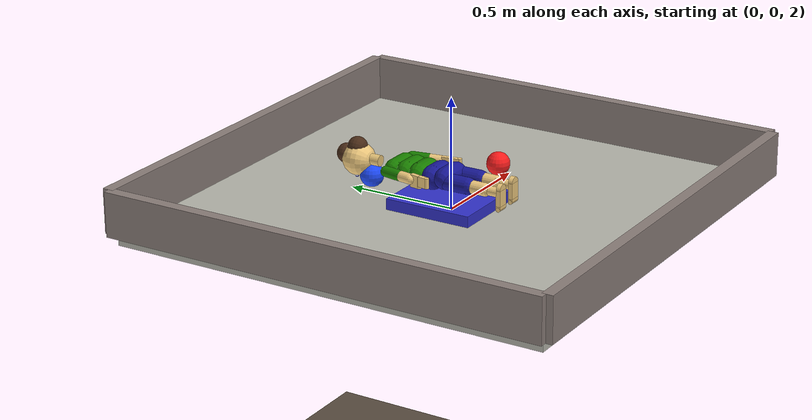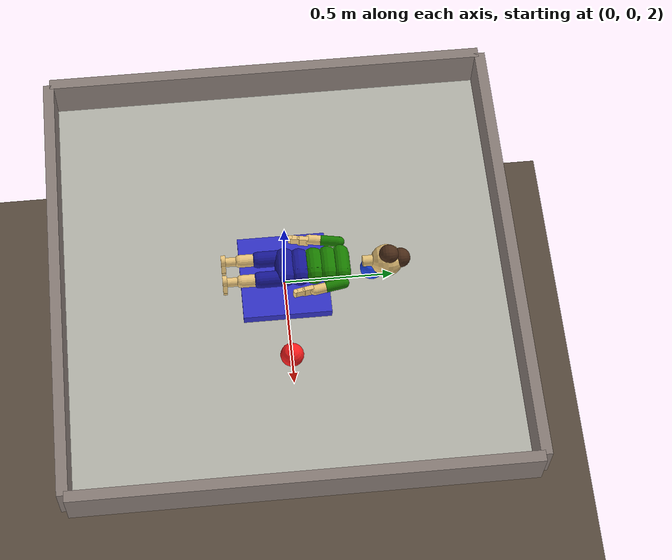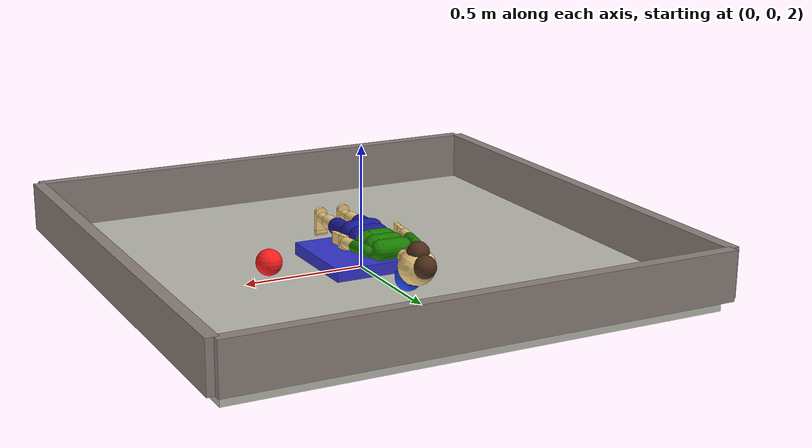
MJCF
<mujoco model="mimo_crawler_cart">
  <compiler angle="degree" inertiafromgeom="true"/>
  <option gravity="0 0 -9.81" integrator="Euler" timestep="0.005" cone="elliptic"/>

  <default>
    <joint limited="true" damping=".1" stiffness=".1" armature="0.001"
           solimplimit="0.98 0.99 0.001 .5 1" solreflimit="0.02 1"/>
    <geom condim="3" friction="1 0.005 0.0002"
          solimp="0.95 0.99 0.001 0.5 1" solref="0.005 1"/>
    <motor ctrlrange="-1 1" ctrllimited="true" forcelimited="true"/>
  </default>

  <asset>
    <material name="skin"       rgba="0.95 0.80 0.50 1"/>
    <material name="head_mat"   rgba="0.95 0.80 0.50 1"/>
    <material name="green_top"  rgba="0.10 0.50 0.00 1"/>
    <material name="blue_pants" rgba="0.10 0.10 0.60 1"/>
    <material name="eye_mat"    rgba="0.98 0.98 0.95 1"/>
    <material name="iris_mat"   rgba="0.15 0.15 0.85 1"/>
    <material name="pupil_mat"  rgba="0.05 0.05 0.05 1"/>
    <material name="hair_mat"   rgba="0.30 0.18 0.10 1"/>
    <material name="lip_mat"    rgba="0.85 0.40 0.35 1"/>
    <material name="neck_mat"   rgba="0.92 0.78 0.48 1"/>
    <material name="cart_mat"   rgba="0.20 0.20 0.80 0.9"/>

    <material name="MatPlatform" rgba="0.72 0.72 0.68 1"/>
    <material name="MatGround"   rgba="0.35 0.30 0.25 1"/>
    <material name="MatWall"     rgba="0.55 0.50 0.48 1"/>
  </asset>

  <contact>
    <pair geom1="lb" geom2="ub1" condim="1"/>
    <!-- Cart geom does not collide with AB body geoms to avoid instability -->
    <exclude body1="cart" body2="hip"/>
  </contact>

  <tendon>
    <fixed name="hip_bend" limited="true" range="-.01 .01">
      <joint joint="robot:hip_bend1" coef="1"/>
      <joint joint="robot:hip_bend2" coef="-1"/>
    </fixed>
    <fixed name="hip_rotation" limited="true" range="-.01 .01">
      <joint joint="robot:hip_rot1" coef="1"/>
      <joint joint="robot:hip_rot2" coef="-1"/>
    </fixed>
    <fixed name="hip_lean" limited="true" range="-.01 .01">
      <joint joint="robot:hip_lean1" coef="1"/>
      <joint joint="robot:hip_lean2" coef="-.5"/>
    </fixed>
  </tendon>

  <worldbody>
    <light cutoff="100" diffuse="1 1 1" dir="0 0 -1" directional="true"
           pos="0 0 5" specular="0.2 0.2 0.2"/>

    <geom name="ground" type="plane" size="10 10 0.1" pos="0 0 0"
          material="MatGround" conaffinity="1" contype="1"/>

    <!-- Platform: top surface at z=2.025 -->
    <geom name="platform" type="box" size="1.0 1.0 0.025" pos="0 0 2.0"
          material="MatPlatform" conaffinity="3" contype="3" friction="0.9 0.3 0.1"/>

    <!-- Guardrails: 20cm tall walls -->
    <geom name="rail_N" type="box" size="1.02 0.025 0.10" pos="0  1.025 2.125"
          material="MatWall" conaffinity="3" contype="3"/>
    <geom name="rail_S" type="box" size="1.02 0.025 0.10" pos="0 -1.025 2.125"
          material="MatWall" conaffinity="3" contype="3"/>
    <geom name="rail_E" type="box" size="0.025 1.02 0.10" pos=" 1.025 0 2.125"
          material="MatWall" conaffinity="3" contype="3"/>
    <geom name="rail_W" type="box" size="0.025 1.02 0.10" pos="-1.025 0 2.125"
          material="MatWall" conaffinity="3" contype="3"/>

    <body name="cart" pos="0 0 2.05">
      <joint name="cart_x" type="slide" axis="1 0 0" limited="false"
             damping="0" stiffness="0" armature="0" frictionloss="0"/>
      <joint name="cart_y" type="slide" axis="0 1 0" limited="false"
             damping="0" stiffness="0" armature="0" frictionloss="0"/>
      <geom name="cart_geom" type="box" size="0.20 0.20 0.025"
            material="cart_mat" contype="0" conaffinity="0" mass="0.5"/>

      <body name="hip" pos="0 0 0.10" quat="0.5 -0.5 0.5 0.5">
        <!-- NO free joint here: AB is rigidly mounted on the cart -->
        <geom name="lb" type="capsule" size=".048 .043" mass="1.1584"
              material="blue_pants" pos="-.002 0 0.005" euler="90 0 0"/>

        <body name="lower_body" pos="0.002 0 0.076">
          <joint name="robot:hip_lean1" type="hinge" pos="0 0 -.05" axis="1 0 0"
                 range="-14 14" stiffness="3.38" damping="0.77" frictionloss=".049" armature="0.01"/>
          <joint name="robot:hip_rot1"  type="hinge" pos="0 0 -.05" axis="0 0 1"
                 range="-18 18" stiffness="1.45" damping="0.29" frictionloss=".018" armature="0.01"/>
          <joint name="robot:hip_bend1" type="hinge" pos="0 0 -0.05" axis="0 1 0"
                 range="-17 30.5" stiffness="2.20" damping="0.84" frictionloss="0.040" armature="0.01"/>
          <geom name="cb" type="capsule" size=".053 .035" mass="1.3245"
                material="blue_pants" pos="0.005 0 -.008" euler="90 0 0" contype="0"/>

          <body name="upper_body" pos="-.002 0 0.091">
            <joint name="robot:hip_lean2" type="hinge" pos="0 0 -.05" axis="1 0 0"
                   range="-27 27" stiffness="1.69" damping="0.38" frictionloss=".024" armature="0.01"/>
            <joint name="robot:hip_rot2"  type="hinge" pos="0 0 -.05" axis="0 0 1"
                   range="-18 18" stiffness="1.45" damping="0.29" frictionloss=".018" armature="0.01"/>
            <joint name="robot:hip_bend2" type="hinge" pos="0 0 -.05" axis="0 1 0"
                   range="-17 30.5" stiffness="2.20" damping="0.84" frictionloss="0.040" armature="0.01"/>
            <geom name="ub1" type="capsule" size=".052 .035" mass="1.0882"
                  material="green_top" pos="0.007 0 -.032" euler="90 0 0"/>
            <geom name="ub2" type="capsule" size=".048 .039" mass="0.9499"
                  material="green_top" pos="0.004 0 0.03" euler="90 0 0"/>

            <body name="chest" pos="0 0 0.09">
              <joint name="robot:chest_lean" type="hinge" pos="0 0 0" axis="1 0 0"
                     range="-9 9" stiffness="1.69" damping="0.38" frictionloss=".024" armature="0.01"/>
              <joint name="robot:chest_rot"  type="hinge" pos="0 0 0" axis="0 0 1"
                     range="-18 18" stiffness="1.45" damping="0.29" frictionloss=".018" armature="0.01"/>
              <geom name="ub3" type="capsule" size=".041 .047" mass="0.7217"
                    material="green_top" pos="0 0 0" euler="90 0 0"/>

              <!-- RIGHT ARM -->
              <body name="right_upper_arm" pos="-.005 -0.105 .003" euler="170 0 0">
                <joint name="robot:right_shoulder_horizontal" type="hinge" pos="0 -.024 0"
                       axis="0 1 -4" range="-28 118" stiffness=".09" damping=".05"
                       frictionloss=".0009" armature="0.004"/>
                <joint name="robot:right_shoulder_ad_ab" type="hinge" pos="0 0 0"
                       axis="-1 0 0" range="-84 183" stiffness=".11" damping=".10"
                       frictionloss=".0014" armature="0.004"/>
                <joint name="robot:right_shoulder_rotation" type="hinge" pos="0 0 0"
                       axis="0 0 -1" range="-99 67" stiffness=".12" damping=".07"
                       frictionloss=".0008" armature="0.004"/>
                <geom name="right_uarm1" type="capsule" material="green_top"
                      size="0.024 0.040" mass=".200" pos="0 0 .040"/>
                <body name="right_lower_arm" pos="0 0 .080">
                  <joint name="robot:right_elbow" type="hinge" pos="0 0 0" axis="0 -1 0"
                         springref="-20" range="-146 5" stiffness=".13" damping=".11"
                         frictionloss=".030" armature="0.002"/>
                  <geom name="right_larm" type="capsule" size=".023 0.028" mass=".140" pos="0 0 .028" material="skin"/>
                  <body name="right_hand" pos="0 -.007 .060">
                    <joint name="robot:right_hand1" type="hinge" pos="0 .007 0" axis="0 0 -1"
                           springref="-20" range="-90 90" stiffness=".22" damping=".03" frictionloss=".007" armature="0.001"/>
                    <joint name="robot:right_hand2" type="hinge" pos="0 0 0" axis="-1 0 0"
                           range="-92 86" stiffness=".33" damping=".11" frictionloss=".007" armature="0.001"/>
                    <joint name="robot:right_hand3" type="hinge" pos="0 0 0" axis="0 1 0"
                           range="-53 48" stiffness=".38" damping=".11" frictionloss=".007" armature="0.001"/>
                    <geom name="geom:right_hand1" type="box" size=".0281 .01 .0208"
                          mass=".04315" pos=".005 0 .0208" material="skin"/>
                    <geom name="geom:right_hand2" type="cylinder" size=".0102 .0278"
                          mass=".01602" pos=".005 0 .0416" euler="0 90 0" material="skin"/>
                    <site name="right_hand_touch" pos=".005 0 .03" size="0.035" rgba="0 0 0 0"/>
                    <body name="right_fingers" pos="0 0 .0416">
                      <joint name="robot:right_fingers" type="hinge" pos="0 0 0" axis="-1 0 0"
                             springref="-40" range="-160 8" stiffness=".017" damping=".018"
                             frictionloss=".0023" armature="0.0001"/>
                      <geom name="geom:right_fingers1" type="box" size=".0228 .01 .0207"
                            mass=".03494" pos="0 0 .0207" material="skin" friction="5 0.02 0.01"/>
                      <geom name="geom:right_fingers2" type="cylinder" size=".0102 .023"
                            mass=".01323" pos="0 0 .0414" euler="0 90 0" material="skin" friction="5 0.02 0.01"/>
                      <site name="right_fingers_touch" pos="0 0 .03" size="0.025" rgba="0 0 0 0"/>
                    </body>
                  </body>
                </body>
              </body>

              <!-- LEFT ARM -->
              <body name="left_upper_arm" pos="-.005 0.105 .003" euler="-170 0 0">
                <joint name="robot:left_shoulder_horizontal" type="hinge" pos="0 .024 0"
                       axis="0 1 4" range="-28 118" stiffness=".09" damping=".05"
                       frictionloss=".0009" armature="0.004"/>
                <joint name="robot:left_shoulder_ad_ab" type="hinge" pos="0 0 0"
                       axis="1 0 0" range="-84 183" stiffness=".11" damping=".10"
                       frictionloss=".0014" armature="0.004"/>
                <joint name="robot:left_shoulder_rotation" type="hinge" pos="0 0 0"
                       axis="0 0 1" range="-99 67" stiffness=".12" damping=".07"
                       frictionloss=".0008" armature="0.004"/>
                <geom name="left_uarm1" type="capsule" material="green_top"
                      size="0.024 0.040" mass=".200" pos="0 0 .040"/>
                <body name="left_lower_arm" pos="0 0 .080">
                  <joint name="robot:left_elbow" type="hinge" pos="0 0 0" axis="0 -1 0"
                         springref="-20" range="-146 5" stiffness=".13" damping=".11"
                         frictionloss=".030" armature="0.002"/>
                  <geom name="left_larm" type="capsule" size=".023 0.028" mass=".140" pos="0 0 .028" material="skin"/>
                  <body name="left_hand" pos="0 .007 .060">
                    <joint name="robot:left_hand1" type="hinge" pos="0 .007 0" axis="0 0 1"
                           springref="-20" range="-90 90" stiffness=".22" damping=".03" frictionloss=".007" armature="0.001"/>
                    <joint name="robot:left_hand2" type="hinge" pos="0 0 0" axis="-1 0 0"
                           range="-92 86" stiffness=".33" damping=".11" frictionloss=".007" armature="0.001"/>
                    <joint name="robot:left_hand3" type="hinge" pos="0 0 0" axis="0 1 0"
                           range="-53 48" stiffness=".38" damping=".11" frictionloss=".007" armature="0.001"/>
                    <geom name="geom:left_hand1" type="box" size=".0281 .01 .0208"
                          mass=".04315" pos=".005 0 .0208" material="skin"/>
                    <geom name="geom:left_hand2" type="cylinder" size=".0102 .0278"
                          mass=".01602" pos=".005 0 .0416" euler="0 90 0" material="skin"/>
                    <site name="left_hand_touch" pos=".005 0 .03" size="0.035" rgba="0 0 0 0"/>
                    <body name="left_fingers" pos="0 0 .0416">
                      <joint name="robot:left_fingers" type="hinge" pos="0 0 0" axis="1 0 0"
                             springref="-40" range="-160 8" stiffness=".017" damping=".018"
                             frictionloss=".0023" armature="0.0001"/>
                      <geom name="geom:left_fingers1" type="box" size=".0228 .01 .0207"
                            mass=".03494" pos="0 0 .0207" material="skin" friction="5 0.02 0.01"/>
                      <geom name="geom:left_fingers2" type="cylinder" size=".0102 .023"
                            mass=".01323" pos="0 0 .0414" euler="0 90 0" material="skin" friction="5 0.02 0.01"/>
                      <site name="left_fingers_touch" pos="0 0 .03" size="0.025" rgba="0 0 0 0"/>
                    </body>
                  </body>
                </body>
              </body>

              <!-- HEAD -->
              <body name="head" pos="0 0 .135">
                <joint name="robot:head_swivel"    type="hinge" pos="0 0 0"      axis="0 0 1"
                       range="-111 111" stiffness=".23" damping=".29" frictionloss=".018" armature="0.005"/>
                <joint name="robot:head_tilt"      type="hinge" pos="0 0 0.0123" axis="0 1 0"
                       range="-70 81"  stiffness=".45" damping=".53" frictionloss=".018" armature="0.005"/>
                <joint name="robot:head_tilt_side" type="hinge" pos="0 0 0.0245" axis="1 0 0"
                       range="-70 70"  stiffness=".37" damping=".29" frictionloss=".018" armature="0.005"/>
                <geom name="head_geom" type="sphere" size=".0735" mass="1.7748"
                      material="head_mat" pos="0.01 0 0.0735"/>
                <site name="vestibular" type="sphere" size="0.01" pos="0.01 0 0.0735"/>

                <geom name="neck" type="cylinder" material="neck_mat"
                      size=".025 .024" pos="0 0 -.013" mass="0.001"
                      contype="0" conaffinity="0"/>

                <geom name="geom:left_eye"  type="sphere" material="eye_mat" size=".015"
                      mass=".001" pos=".066 .025 .067" contype="0" conaffinity="0"/>
                <geom name="geom:right_eye" type="sphere" material="eye_mat" size=".015"
                      mass=".001" pos=".066 -.025 .067" contype="0" conaffinity="0"/>
                <geom name="iris_left"  type="sphere" material="iris_mat" size=".009"
                      mass=".0001" pos=".076 .025 .067" contype="0" conaffinity="0"/>
                <geom name="iris_right" type="sphere" material="iris_mat" size=".009"
                      mass=".0001" pos=".076 -.025 .067" contype="0" conaffinity="0"/>
                <geom name="pupil_left"  type="sphere" material="pupil_mat" size=".0045"
                      mass=".0001" pos=".081 .025 .067" contype="0" conaffinity="0"/>
                <geom name="pupil_right" type="sphere" material="pupil_mat" size=".0045"
                      mass=".0001" pos=".081 -.025 .067" contype="0" conaffinity="0"/>
                <geom name="nose" type="sphere" material="head_mat" size=".010"
                      mass=".001" pos=".082 .0 .055" contype="0" conaffinity="0"/>
                <geom name="mouth" type="box" material="lip_mat" size=".012 .002 .003"
                      mass=".0005" pos=".076 .0 .035" contype="0" conaffinity="0"/>
                <geom name="hair_top"  type="sphere" material="hair_mat" size=".045"
                      mass=".005" pos="-.005 0 .135" contype="0" conaffinity="0"/>
                <geom name="hair_back" type="sphere" material="hair_mat" size=".045"
                      mass=".005" pos="-.045 0 .080" contype="0" conaffinity="0"/>

                <camera name="left_eye"  pos=".07  .0245 .067375" xyaxes="0 -1 0  -0.966 0 0.259" fovy="90"/>
                <camera name="right_eye" pos=".07 -.0245 .067375" xyaxes="0 -1 0  -0.966 0 0.259" fovy="90"/>
              </body>
            </body>
          </body>
        </body>

        <!-- RIGHT LEG -->
        <body name="right_upper_leg" pos="0.005 -.051 -.007">
          <joint name="robot:right_hip1" type="hinge" pos="0 0 0" axis="0 1 0"
                 springref="-10" range="-133 20" stiffness="1.72" damping="1.27" frictionloss=".08" armature=".005"/>
          <joint name="robot:right_hip2" type="hinge" pos="0 0 0" axis="1 0 0"
                 range="-51 17" stiffness="3.51" damping="1.99" frictionloss=".062" armature=".005"/>
          <joint name="robot:right_hip3" type="hinge" pos="0 0 0" axis="0 0 -1"
                 range="-32 41" stiffness="2.16" damping="0.75" frictionloss=".027" armature=".005"/>
          <geom name="geom:right_upper_leg1" type="capsule" material="blue_pants"
                size=".037 .053" mass=".680" pos="0 0 -.054"/>
          <body name="right_lower_leg" pos="0 0 -.115">
            <joint name="robot:right_knee" type="hinge" pos="0 0 0" axis="0 -1 0"
                   springref="-30" range="-145 4" stiffness="1.63" damping="0.53" frictionloss=".065" armature=".003"/>
            <geom name="geom:right_lower_leg1" type="capsule" size=".029 .037" mass=".284" pos="0 0 -.037" material="skin"/>
            <geom name="geom:right_lower_leg2" type="capsule" size=".021 .024" mass=".098" pos="0 0 -.114" material="skin"/>
            <body name="right_foot" pos="0 0 -.150">
              <joint name="robot:right_foot1" type="hinge" pos="0 0 .015" axis="0 -1 0"
                     springref="-10" range="-63 32" stiffness="1.29" damping="0.6" frictionloss=".019" armature=".003"/>
              <joint name="robot:right_foot2" type="hinge" pos="0 0 .015" axis="1 0 0"
                     range="-33 31" stiffness="0.96" damping="0.37" frictionloss=".011" armature=".0025"/>
              <joint name="robot:right_foot3" type="hinge" pos="0 0 .015" axis="0 0 1"
                     range="-20 30" stiffness="1.15" damping="0.38" frictionloss=".012" armature=".002"/>
              <geom name="geom:right_foot1" type="cylinder" size=".0249 .0099" mass=".03219" pos="-0.016 0 0" material="skin"/>
              <geom name="geom:right_foot2" type="box" size=".035 .025 .01" mass=".05850" pos="0.019 0 0" material="skin" friction="2 0.02 0.01"/>
              <geom name="geom:right_foot3" type="cylinder" size=".0099 .0248" mass=".01268" pos=".054 0 0" euler="90 0 0" material="skin" friction="2 0.02 0.01"/>
              <site name="right_foot_touch" pos="0.02 0 -0.01" size="0.04" rgba="0 0 0 0"/>
              <body name="right_toes" pos=".054 0 0">
                <joint name="robot:right_toes" type="hinge" pos="0 0 0" axis="0 -1 0"
                       range="-60 80" frictionloss=".005" armature=".0005" stiffness=".106" damping=".04"/>
                <geom name="geom:right_toes1" type="box" size=".007 .0249 .0099" mass=".01084" pos=".007 0 0" material="skin" friction="2 0.02 0.01"/>
                <geom name="geom:right_toes2" type="cylinder" size=".01 .025" mass=".01226" pos=".014 0 0" euler="90 0 0" material="skin" friction="2 0.02 0.01"/>
              </body>
            </body>
          </body>
        </body>

        <!-- LEFT LEG -->
        <body name="left_upper_leg" pos="0.005 .051 -.007">
          <joint name="robot:left_hip1" type="hinge" pos="0 0 0" axis="0 1 0"
                 springref="-10" range="-133 20" stiffness="1.72" damping="1.27" frictionloss=".08" armature=".005"/>
          <joint name="robot:left_hip2" type="hinge" pos="0 0 0" axis="-1 0 0"
                 range="-51 17" stiffness="3.51" damping="1.99" frictionloss=".062" armature=".005"/>
          <joint name="robot:left_hip3" type="hinge" pos="0 0 0" axis="0 0 1"
                 range="-32 41" stiffness="2.16" damping="0.75" frictionloss=".027" armature=".005"/>
          <geom name="geom:left_upper_leg1" type="capsule" material="blue_pants"
                size=".037 .053" mass=".680" pos="0 0 -.054"/>
          <body name="left_lower_leg" pos="0 0 -.115">
            <joint name="robot:left_knee" type="hinge" pos="0 0 0" axis="0 -1 0"
                   springref="-30" range="-145 4" stiffness="1.63" damping="0.53" frictionloss=".065" armature=".003"/>
            <geom name="geom:left_lower_leg1" type="capsule" size=".029 .037" mass=".284" pos="0 0 -.037" material="skin"/>
            <geom name="geom:left_lower_leg2" type="capsule" size=".021 .024" mass=".098" pos="0 0 -.114" material="skin"/>
            <body name="left_foot" pos="0 0 -.150">
              <joint name="robot:left_foot1" type="hinge" pos="0 0 .015" axis="0 -1 0"
                     springref="-10" range="-63 32" stiffness="1.29" damping="0.6" frictionloss=".019" armature=".003"/>
              <joint name="robot:left_foot2" type="hinge" pos="0 0 .015" axis="-1 0 0"
                     range="-33 31" stiffness="0.96" damping="0.37" frictionloss=".011" armature=".0025"/>
              <joint name="robot:left_foot3" type="hinge" pos="0 0 .015" axis="0 0 -1"
                     range="-20 30" stiffness="1.15" damping="0.38" frictionloss=".012" armature=".002"/>
              <geom name="geom:left_foot1" type="cylinder" size=".0249 .0099" mass=".03219" pos="-0.016 0 0" material="skin"/>
              <geom name="geom:left_foot2" type="box" size=".035 .025 .01" mass=".05850" pos="0.019 0 0" material="skin" friction="2 0.02 0.01"/>
              <geom name="geom:left_foot3" type="cylinder" size=".0099 .0248" mass=".01268" pos=".054 0 0" euler="90 0 0" material="skin" friction="2 0.02 0.01"/>
              <site name="left_foot_touch" pos="0.02 0 -0.01" size="0.04" rgba="0 0 0 0"/>
              <body name="left_toes" pos=".054 0 0">
                <joint name="robot:left_toes" type="hinge" pos="0 0 0" axis="0 -1 0"
                       range="-60 80" frictionloss=".005" armature=".0005" stiffness=".106" damping=".04"/>
                <geom name="geom:left_toes1" type="box" size=".007 .0249 .0099" mass=".01084" pos=".007 0 0" material="skin" friction="2 0.02 0.01"/>
                <geom name="geom:left_toes2" type="cylinder" size=".01 .025" mass=".01226" pos=".014 0 0" euler="90 0 0" material="skin" friction="2 0.02 0.01"/>
              </body>
            </body>
          </body>
        </body>

      </body> <!-- end hip (child of cart) -->
    </body> <!-- end cart -->

    <!-- TARGET BALL 1 (red) -->
    <body name="target" pos="0.4 0 2.078">
      <joint name="target_free" type="free" armature="0" damping="0" limited="false" stiffness="0" frictionloss="0"/>
      <geom name="target_geom" type="sphere" size="0.053"
            rgba="1 0.12 0.12 1" contype="1" conaffinity="1" density="150" friction="0.8 0.3 0.1"/>
    </body>

    <!-- TARGET BALL 2 (blue) -->
    <body name="target2" pos="0 0.4 2.078">
      <joint name="target2_free" type="free" armature="0" damping="0" limited="false" stiffness="0" frictionloss="0"/>
      <geom name="target2_geom" type="sphere" size="0.053"
            rgba="0.12 0.3 1 1" contype="1" conaffinity="1" density="150" friction="0.8 0.3 0.1"/>
    </body>

    <camera name="overhead" pos="0 0 5.5" xyaxes="1 0 0 0 1 0" fovy="55"/>
    <camera name="ringside" pos="0 -2.5 2.4" xyaxes="1 0 0 0 0.12 0.993" fovy="45"/>
  </worldbody>

  <actuator>
    <!-- Trunk: 5 DOF (indices 0-4; zeroed by env when --hip-actuation off) -->
    <motor name="act:hip_bend"    joint="robot:hip_bend1"  gear="10.58" forcerange="-1 .765"/>
    <motor name="act:hip_twist"   joint="robot:hip_rot1"   gear="3.63"  forcerange="-1 1"/>
    <motor name="act:hip_lean"    joint="robot:hip_lean1"  gear="7.25"  forcerange="-1 1"/>
    <motor name="act:chest_twist" joint="robot:chest_rot"  gear="0.36"  forcerange="-1 1"/>
    <motor name="act:chest_lean"  joint="robot:chest_lean" gear="0.72"  forcerange="-1 1"/>
    <!-- Head: 2 DOF -->
    <motor name="act:head_swivel" joint="robot:head_swivel" gear="1.8"  forcerange="-1 1"/>
    <motor name="act:head_tilt"   joint="robot:head_tilt"   gear="3.3"  forcerange="-1 .55"/>
    <!-- Right arm: 4 DOF -->
    <motor name="act:r_sh_horiz"  joint="robot:right_shoulder_horizontal" gear="1.8"  forcerange="-1 1"/>
    <motor name="act:r_sh_adab"   joint="robot:right_shoulder_ad_ab"      gear="4"    forcerange="-.6875 1"/>
    <motor name="act:r_sh_rot"    joint="robot:right_shoulder_rotation"   gear="2.5"  forcerange="-1 .64"/>
    <motor name="act:r_elbow"     joint="robot:right_elbow"               gear="3.6"  forcerange="-1 .83"/>
    <!-- Left arm: 4 DOF -->
    <motor name="act:l_sh_horiz"  joint="robot:left_shoulder_horizontal"  gear="1.8"  forcerange="-1 1"/>
    <motor name="act:l_sh_adab"   joint="robot:left_shoulder_ad_ab"       gear="4"    forcerange="-.6875 1"/>
    <motor name="act:l_sh_rot"    joint="robot:left_shoulder_rotation"    gear="2.5"  forcerange="-1 .64"/>
    <motor name="act:l_elbow"     joint="robot:left_elbow"                gear="3.6"  forcerange="-1 .83"/>
    <!-- Right leg: 5 DOF (indices 15-19; zeroed when --hip-actuation off) -->
    <motor name="act:r_hip_flex"  joint="robot:right_hip1"  gear="8"    forcerange="-1 1"/>
    <motor name="act:r_hip_ab"    joint="robot:right_hip2"  gear="6.24" forcerange="-1 1"/>
    <motor name="act:r_hip_rot"   joint="robot:right_hip3"  gear="3.54" forcerange="-.75 1"/>
    <motor name="act:r_knee"      joint="robot:right_knee"  gear="10"   forcerange="-.65 1"/>
    <motor name="act:r_ankle"     joint="robot:right_foot1" gear="3.78" forcerange="-1 .5"/>
    <!-- Left leg: 5 DOF (indices 20-24; zeroed when --hip-actuation off) -->
    <motor name="act:l_hip_flex"  joint="robot:left_hip1"   gear="8"    forcerange="-1 1"/>
    <motor name="act:l_hip_ab"    joint="robot:left_hip2"   gear="6.24" forcerange="-1 1"/>
    <motor name="act:l_hip_rot"   joint="robot:left_hip3"   gear="3.54" forcerange="-.75 1"/>
    <motor name="act:l_knee"      joint="robot:left_knee"   gear="10"   forcerange="-.65 1"/>
    <motor name="act:l_ankle"     joint="robot:left_foot1"  gear="3.78" forcerange="-1 .5"/>
    <motor name="act:r_hand1"   joint="robot:right_hand1"   gear="1.0" forcerange="-1 1"/>
    <motor name="act:r_hand2"   joint="robot:right_hand2"   gear="1.0" forcerange="-1 1"/>
    <motor name="act:r_hand3"   joint="robot:right_hand3"   gear="1.0" forcerange="-1 1"/>
    <motor name="act:r_fingers" joint="robot:right_fingers" gear="1.5" forcerange="-1 1"/>
    <motor name="act:l_hand1"   joint="robot:left_hand1"    gear="1.0" forcerange="-1 1"/>
    <motor name="act:l_hand2"   joint="robot:left_hand2"    gear="1.0" forcerange="-1 1"/>
    <motor name="act:l_hand3"   joint="robot:left_hand3"    gear="1.0" forcerange="-1 1"/>
    <motor name="act:l_fingers" joint="robot:left_fingers"  gear="1.5" forcerange="-1 1"/>
  </actuator>

  <sensor>
    <accelerometer name="vestibular_acc"  site="vestibular"/>
    <gyro          name="vestibular_gyro" site="vestibular"/>
    <jointpos name="pos:hip_bend"    joint="robot:hip_bend1"/>
    <jointpos name="pos:hip_twist"   joint="robot:hip_rot1"/>
    <jointpos name="pos:hip_lean"    joint="robot:hip_lean1"/>
    <jointpos name="pos:chest_twist" joint="robot:chest_rot"/>
    <jointpos name="pos:chest_lean"  joint="robot:chest_lean"/>
    <jointpos name="pos:head_swivel" joint="robot:head_swivel"/>
    <jointpos name="pos:head_tilt"   joint="robot:head_tilt"/>
    <jointpos name="pos:r_sh_horiz"  joint="robot:right_shoulder_horizontal"/>
    <jointpos name="pos:r_sh_adab"   joint="robot:right_shoulder_ad_ab"/>
    <jointpos name="pos:r_sh_rot"    joint="robot:right_shoulder_rotation"/>
    <jointpos name="pos:r_elbow"     joint="robot:right_elbow"/>
    <jointpos name="pos:l_sh_horiz"  joint="robot:left_shoulder_horizontal"/>
    <jointpos name="pos:l_sh_adab"   joint="robot:left_shoulder_ad_ab"/>
    <jointpos name="pos:l_sh_rot"    joint="robot:left_shoulder_rotation"/>
    <jointpos name="pos:l_elbow"     joint="robot:left_elbow"/>
    <jointpos name="pos:r_hip_flex"  joint="robot:right_hip1"/>
    <jointpos name="pos:r_hip_ab"    joint="robot:right_hip2"/>
    <jointpos name="pos:r_hip_rot"   joint="robot:right_hip3"/>
    <jointpos name="pos:r_knee"      joint="robot:right_knee"/>
    <jointpos name="pos:r_ankle"     joint="robot:right_foot1"/>
    <jointpos name="pos:l_hip_flex"  joint="robot:left_hip1"/>
    <jointpos name="pos:l_hip_ab"    joint="robot:left_hip2"/>
    <jointpos name="pos:l_hip_rot"   joint="robot:left_hip3"/>
    <jointpos name="pos:l_knee"      joint="robot:left_knee"/>
    <jointpos name="pos:l_ankle"     joint="robot:left_foot1"/>
    <jointvel name="vel:hip_bend"    joint="robot:hip_bend1"/>
    <jointvel name="vel:hip_twist"   joint="robot:hip_rot1"/>
    <jointvel name="vel:hip_lean"    joint="robot:hip_lean1"/>
    <jointvel name="vel:chest_twist" joint="robot:chest_rot"/>
    <jointvel name="vel:chest_lean"  joint="robot:chest_lean"/>
    <jointvel name="vel:head_swivel" joint="robot:head_swivel"/>
    <jointvel name="vel:head_tilt"   joint="robot:head_tilt"/>
    <jointvel name="vel:r_sh_horiz"  joint="robot:right_shoulder_horizontal"/>
    <jointvel name="vel:r_sh_adab"   joint="robot:right_shoulder_ad_ab"/>
    <jointvel name="vel:r_sh_rot"    joint="robot:right_shoulder_rotation"/>
    <jointvel name="vel:r_elbow"     joint="robot:right_elbow"/>
    <jointvel name="vel:l_sh_horiz"  joint="robot:left_shoulder_horizontal"/>
    <jointvel name="vel:l_sh_adab"   joint="robot:left_shoulder_ad_ab"/>
    <jointvel name="vel:l_sh_rot"    joint="robot:left_shoulder_rotation"/>
    <jointvel name="vel:l_elbow"     joint="robot:left_elbow"/>
    <jointvel name="vel:r_hip_flex"  joint="robot:right_hip1"/>
    <jointvel name="vel:r_hip_ab"    joint="robot:right_hip2"/>
    <jointvel name="vel:r_hip_rot"   joint="robot:right_hip3"/>
    <jointvel name="vel:r_knee"      joint="robot:right_knee"/>
    <jointvel name="vel:r_ankle"     joint="robot:right_foot1"/>
    <jointvel name="vel:l_hip_flex"  joint="robot:left_hip1"/>
    <jointvel name="vel:l_hip_ab"    joint="robot:left_hip2"/>
    <jointvel name="vel:l_hip_rot"   joint="robot:left_hip3"/>
    <jointvel name="vel:l_knee"      joint="robot:left_knee"/>
    <jointvel name="vel:l_ankle"     joint="robot:left_foot1"/>
    <touch name="touch:right_hand"    site="right_hand_touch"/>
    <touch name="touch:left_hand"     site="left_hand_touch"/>
    <touch name="touch:right_fingers" site="right_fingers_touch"/>
    <touch name="touch:left_fingers"  site="left_fingers_touch"/>
    <touch name="touch:right_foot"    site="right_foot_touch"/>
    <touch name="touch:left_foot"     site="left_foot_touch"/>
  </sensor>

</mujoco>
